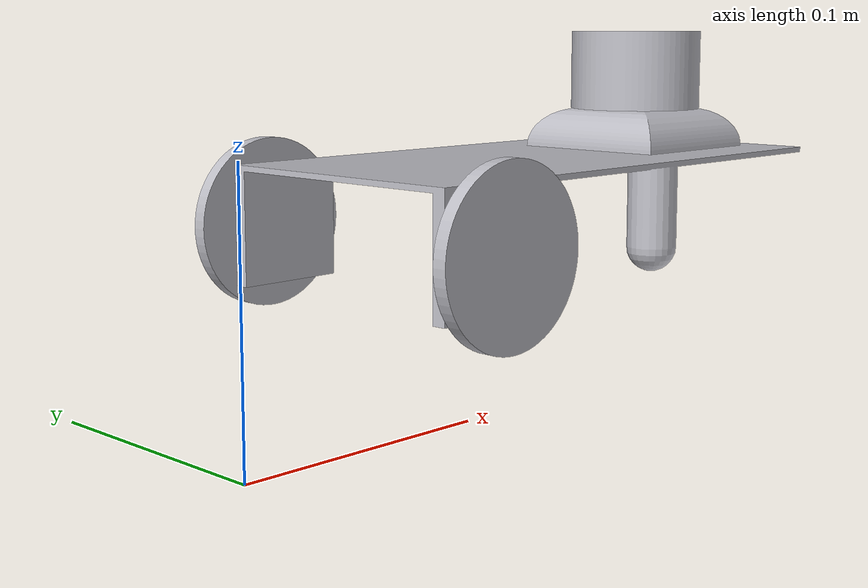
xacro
<?xml version="1.0" ?>
<robot name="(Unsaved)" xmlns:xacro="http://www.ros.org/wiki/xacro">

<xacro:include filename="$(find (Unsaved)_description)/urdf/materials.xacro" />
<xacro:include filename="$(find (Unsaved)_description)/urdf/(Unsaved).trans" />
<xacro:include filename="$(find (Unsaved)_description)/urdf/(Unsaved).gazebo" />
<link name="base_link">
  <inertial>
    <origin xyz="0.1478661517444531 0.00030207954225111 0.06842660997238105" rpy="0 0 0"/>
    <mass value="0.9116492466696066"/>
    <inertia ixx="0.000857" iyy="0.003716" izz="0.004208" ixy="-1.2e-05" iyz="-1e-06" ixz="-0.000246"/>
  </inertial>
  <visual>
    <origin xyz="0 0 0" rpy="0 0 0"/>
    <geometry>
      <mesh filename="package://(Unsaved)_description/meshes/base_link.stl" scale="0.001 0.001 0.001"/>
    </geometry>
    <material name="silver"/>
  </visual>
  <collision>
    <origin xyz="0 0 0" rpy="0 0 0"/>
    <geometry>
      <mesh filename="package://(Unsaved)_description/meshes/base_link.stl" scale="0.001 0.001 0.001"/>
    </geometry>
  </collision>
</link>

<link name="left_wheel_1">
  <inertial>
    <origin xyz="-3.1521975549925196e-07 0.002499999999999003 1.8526609722041565e-07" rpy="0 0 0"/>
    <mass value="0.11097676048805943"/>
    <inertia ixx="2.5e-05" iyy="5e-05" izz="2.5e-05" ixy="0.0" iyz="0.0" ixz="-0.0"/>
  </inertial>
  <visual>
    <origin xyz="-0.048475 -0.055 -0.050872" rpy="0 0 0"/>
    <geometry>
      <mesh filename="package://(Unsaved)_description/meshes/left_wheel_1.stl" scale="0.001 0.001 0.001"/>
    </geometry>
    <material name="silver"/>
  </visual>
  <collision>
    <origin xyz="-0.048475 -0.055 -0.050872" rpy="0 0 0"/>
    <geometry>
      <mesh filename="package://(Unsaved)_description/meshes/left_wheel_1.stl" scale="0.001 0.001 0.001"/>
    </geometry>
  </collision>
</link>

<link name="right_wheel_1">
  <inertial>
    <origin xyz="-3.152197560335468e-07 -0.0024999999999989267 1.8526609657509852e-07" rpy="0 0 0"/>
    <mass value="0.11097676048805946"/>
    <inertia ixx="2.5e-05" iyy="5e-05" izz="2.5e-05" ixy="0.0" iyz="0.0" ixz="-0.0"/>
  </inertial>
  <visual>
    <origin xyz="-0.048475 0.055 -0.050872" rpy="0 0 0"/>
    <geometry>
      <mesh filename="package://(Unsaved)_description/meshes/right_wheel_1.stl" scale="0.001 0.001 0.001"/>
    </geometry>
    <material name="silver"/>
  </visual>
  <collision>
    <origin xyz="-0.048475 0.055 -0.050872" rpy="0 0 0"/>
    <geometry>
      <mesh filename="package://(Unsaved)_description/meshes/right_wheel_1.stl" scale="0.001 0.001 0.001"/>
    </geometry>
  </collision>
</link>

<link name="liar_1">
  <inertial>
    <origin xyz="2.953776463698876e-07 -3.9380423548865135e-07 0.015000185266093771" rpy="0 0 0"/>
    <mass value="0.4624031687002476"/>
    <inertia ixx="0.000107" iyy="0.000107" izz="0.000145" ixy="0.0" iyz="0.0" ixz="-0.0"/>
  </inertial>
  <visual>
    <origin xyz="-0.188134 -0.000591 -0.087872" rpy="0 0 0"/>
    <geometry>
      <mesh filename="package://(Unsaved)_description/meshes/liar_1.stl" scale="0.001 0.001 0.001"/>
    </geometry>
    <material name="silver"/>
  </visual>
  <collision>
    <origin xyz="-0.188134 -0.000591 -0.087872" rpy="0 0 0"/>
    <geometry>
      <mesh filename="package://(Unsaved)_description/meshes/liar_1.stl" scale="0.001 0.001 0.001"/>
    </geometry>
  </collision>
</link>

<joint name="Rev1" type="continuous">
  <origin xyz="0.048475 0.055 0.050872" rpy="0 0 0"/>
  <parent link="base_link"/>
  <child link="left_wheel_1"/>
  <axis xyz="0.0 1.0 0.0"/>
</joint>

<joint name="Rev2" type="continuous">
  <origin xyz="0.048475 -0.055 0.050872" rpy="0 0 0"/>
  <parent link="base_link"/>
  <child link="right_wheel_1"/>
  <axis xyz="0.0 1.0 0.0"/>
</joint>

<joint name="Rigid4" type="fixed">
  <origin xyz="0.188134 0.000591 0.087872" rpy="0 0 0"/>
  <parent link="base_link"/>
  <child link="liar_1"/>
</joint>

</robot>
